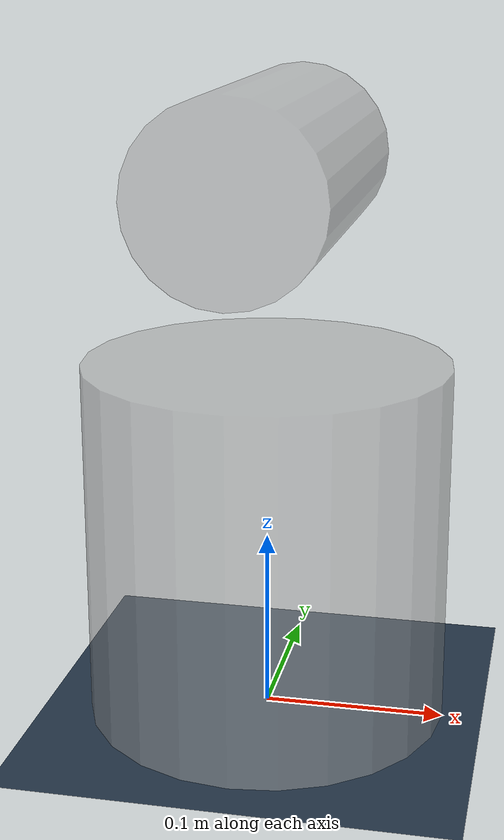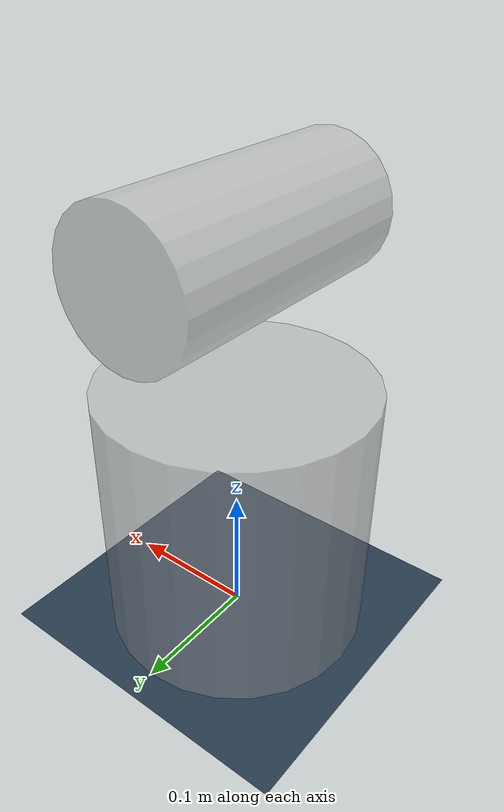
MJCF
<mujoco model="box_on_plane">
  <compiler meshdir="asset" texturedir="asset"/>
  <statistic extent="1.5" meansize=".05"/>
  <option timestep="0.001" jacobian="sparse" gravity="0 0 -9.81"/>
  <size nconmax="3000" njmax="4000"/>
  <visual>
    <rgba haze="0.15 0.25 0.35 1"/>
    <quality shadowsize="4096"/>
    <map stiffness="700" shadowscale="0.5" fogstart="10" fogend="15" zfar="40" haze="0.3"/>
    <scale forcewidth="0.001" />
  </visual>

  <asset>
    <texture type="skybox" builtin="gradient" rgb1="0.3 0.5 0.7" rgb2="0 0 0" width="512" height="512"/>
    <texture name="texplane" type="2d" builtin="checker" rgb1=".2 .3 .4" rgb2=".1 0.15 0.2"
      width="512" height="512" mark="cross" markrgb=".8 .8 .8"/>
    <material name="matplane" reflectance="0.0" texture="texplane" texrepeat="1 1" texuniform="true"/>
  </asset>

  <custom>
    <!-- All custom parameters related to contact surfaces have the prefix cs:: -->
    <text name="cs::HydroelasticContactRepresentation" data="kPolygon"/>
    <numeric name="cs::VisualizeSurfaces" data="1"/>
    <numeric name="cs::cylinder0" data="0 1.0 0.1 0.3 0.3"/>
    <numeric name="cs::cylinder1" data="5e4 5.0 0.05 0.3 0.3"/>
  </custom>

  <worldbody>
    <light directional="true" diffuse=".4 .4 .4" specular="0.1 0.1 0.1" pos="0 0 5.0" dir="0 0 -1" castshadow="false"/>
    <light directional="true" diffuse=".6 .6 .6" specular="0.2 0.2 0.2" pos="0 0 4" dir="0 0 -1" castshadow="false"/>
    <geom name="ground" type="plane" size="0 0 1" pos="0 0 0" quat="1 0 0 0" material="matplane" />
    <body name="body_cylinder0" pos="0 0.0 0.1" >
      <freejoint/>
      <geom name="cylinder0" type="cylinder" size="0.1 0.1" rgba="0.7 0.7 0.7 0.5"/>
    </body>
    <body name="body_cylinder1" pos="0 0.0 0.3" euler="90 0 0" >
      <freejoint/>
      <geom name="cylinder1" type="cylinder" size="0.05 0.1" rgba="0.7 0.7 0.7 0.5"/>
    </body>
  </worldbody>
</mujoco>
